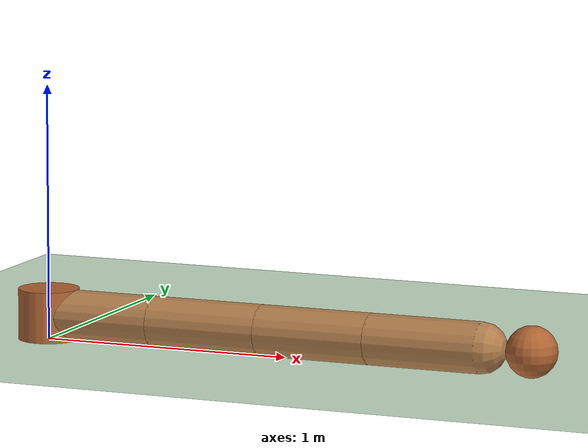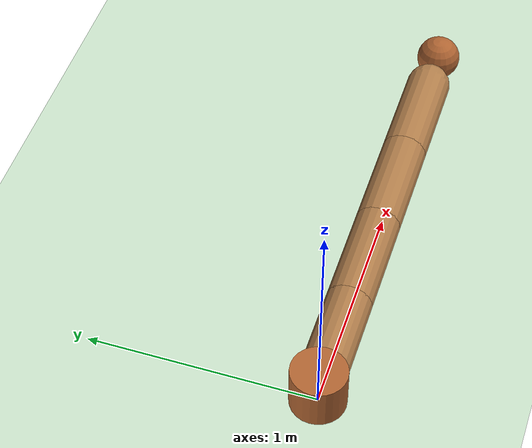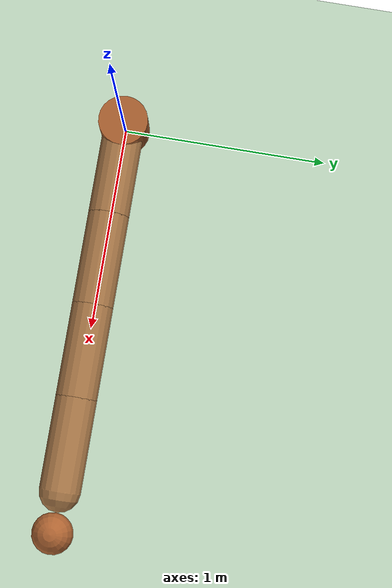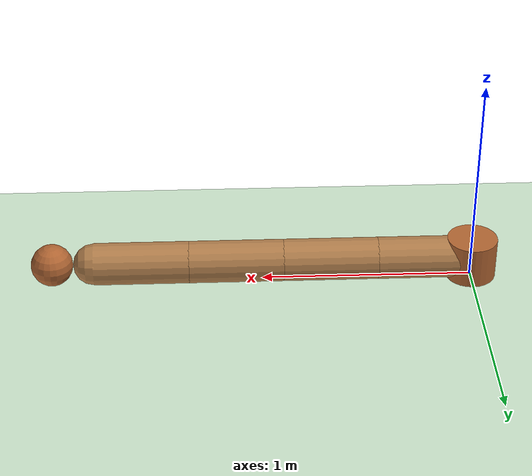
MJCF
<mujoco model="reacher">
  <compiler settotalmass="24" inertiafromgeom="true"/>
  <option timestep="0.01" integrator="RK4" gravity="0 0 -9.81"/>

  <default>
    <geom contype="0" friction="1 .1 .1"/>
    <joint type="hinge" axis="0 0 1" armature="1" damping="1"/>
    <velocity ctrlrange="-50.0 50.0" ctrllimited="true"/>
  </default>

  <asset>
    <texture name="skybox" type="skybox" builtin="gradient" width="100" height="100" rgb1="1 1 1" rgb2="0 0 0"/>
    <texture name="grid" type="2d" builtin="checker" rgb1="0 0 0" rgb2=".8 .8 .8" width="100" height="100"/>
    <material name="grid" texture="grid" shininess="1" texrepeat="60 60" specular="1" reflectance=".5"/>
    <material name="self" rgba=".7 .5 .3 1"/>
    <material name="decoration" rgba=".7 .4 .2 1"/>
    <material name="effector" rgba=".7 .4 .2 1"/>
  </asset>

  <worldbody>
    <light directional="true" cutoff="100" exponent="1" diffuse="1 1 1" specular=".1 .1 .1" pos="0 0 1.3" dir="-0 0 -1.3" />
    <geom conaffinity="0" contype="0" name="ground" type="plane" pos="0 0 0" size="40 40 40" rgba=".8 .9 .8 1" material="grid"/>

    <geom conaffinity="0" contype="0" name="root" type="cylinder" fromto="0 0 0 0 0 .2" size=".12" material="decoration"/>
    <body name="body0" pos="0 0 .1">
      <geom name="link0" type="capsule" fromto="0 0 0 .45 0 0" size=".1" material="self"/>
      <joint name="joint0" limited="false"/>
      <body name="body1" pos=".45 0 0">
        <geom name="link1" type="capsule" fromto="0 0 0 .45 0 0" size=".1" material="self"/>
        <joint name="joint1" limited="true" range="-160 160"/>
        <body name="body2" pos=".45 0 0">
          <geom name="link2" type="capsule" fromto="0 0 0 .45 0 0" size=".1" material="self"/>
          <joint name="joint2" limited="true" range="-160 160"/>
          <body name="body3" pos=".45 0 0">
            <geom name="link3" type="capsule" fromto="0 0 0 .45 0 0" size=".1" material="self"/>
            <joint name="joint3" limited="true" range="-160 160"/>
            <body name="fingertip" pos=".65 0 0">
              <geom contype="0" name="fingertip" type="sphere" size=".1" material="effector"/>
            </body>
          </body>
        </body>
      </body>
    </body>
  </worldbody>

  <actuator>
    <velocity name="joint0" joint="joint0"/>
    <velocity name="joint1" joint="joint1"/>
    <velocity name="joint2" joint="joint2"/>
    <velocity name="joint3" joint="joint3"/>
  </actuator>
</mujoco>
